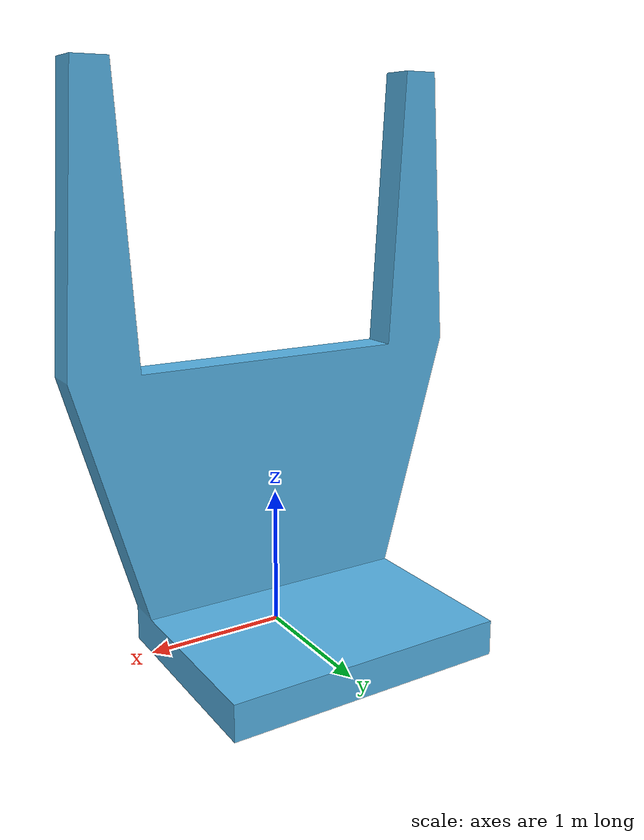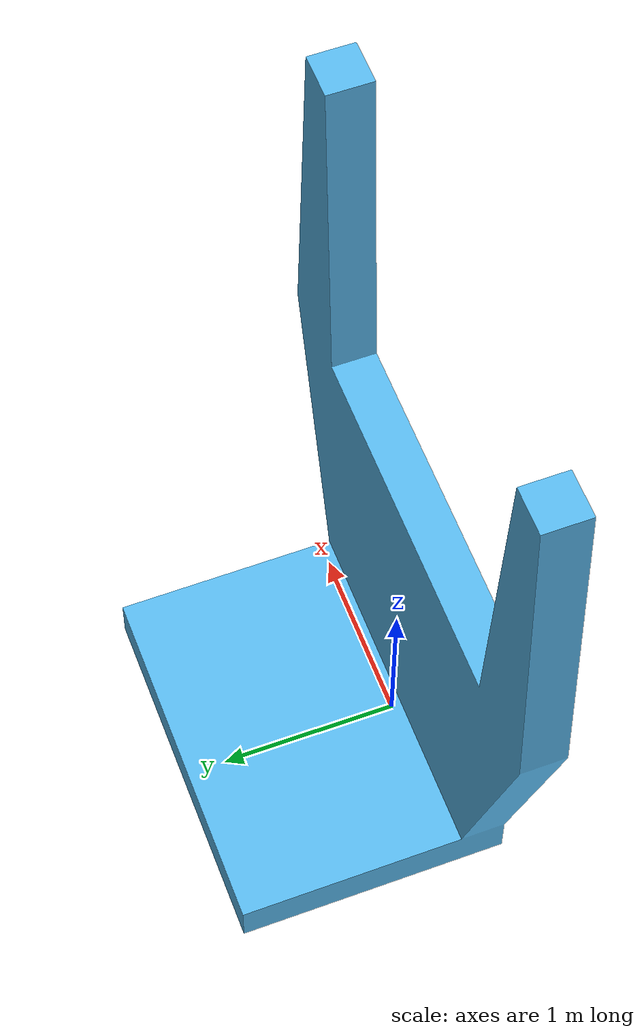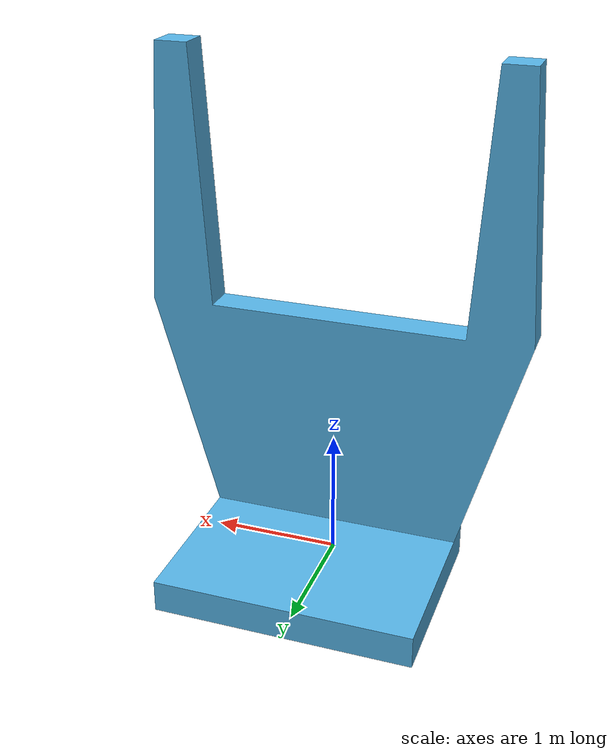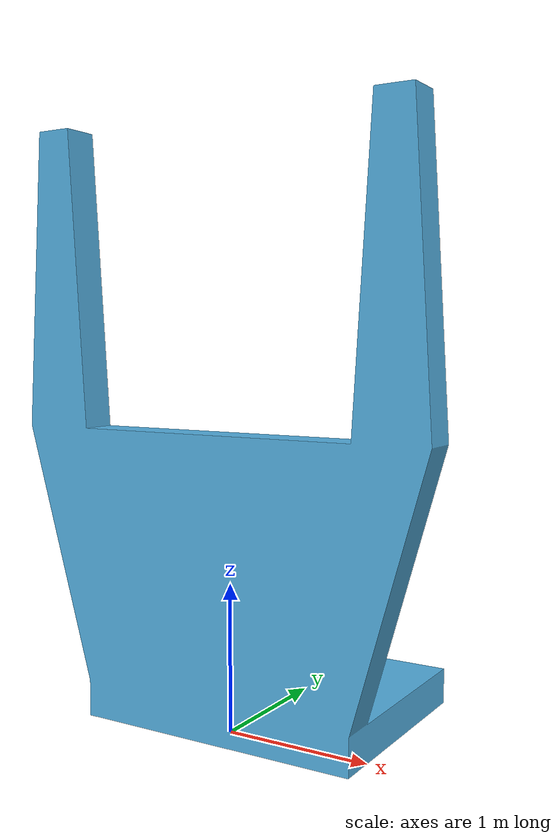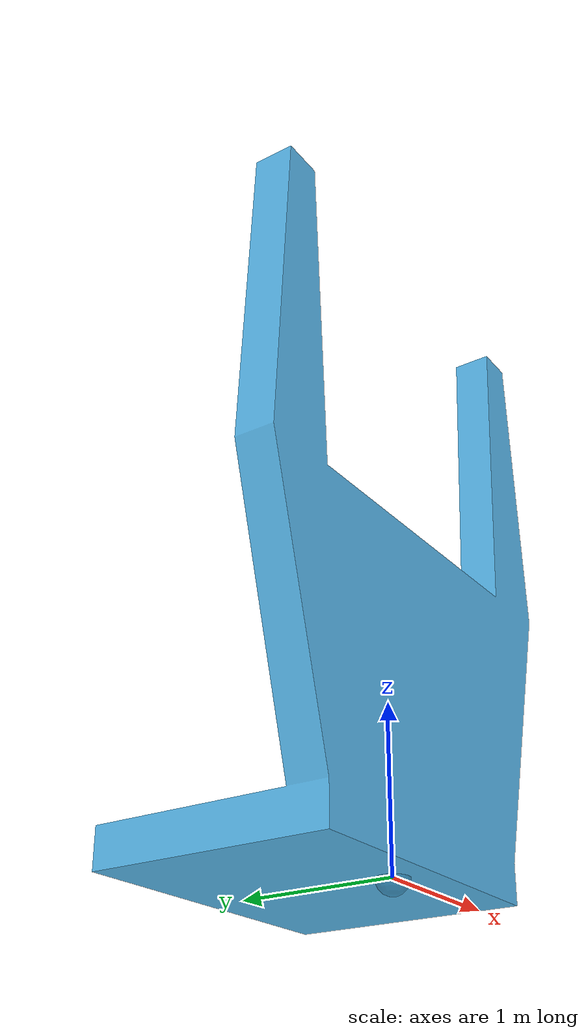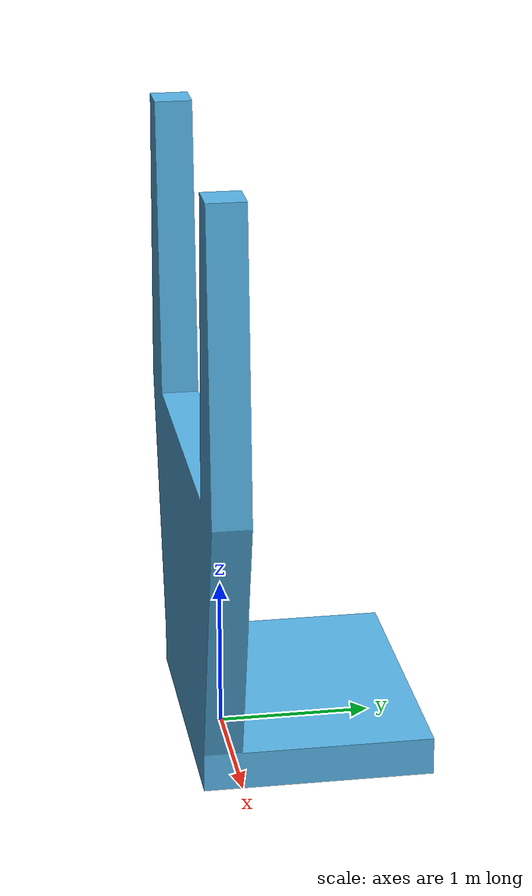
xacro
<?xml version="1.0"?>

<robot name="eval_marvin">

    <material name="OA">
        <color rgba="0.101960784 0.42745098 0.588235294 0.333"/>
    </material>

    <gazebo reference="link_base">
        <turnGravityOff>false</turnGravityOff>
    </gazebo>
    <gazebo>
        <plugin name="gazebo_ros_template" filename="libgazebo_ros_template.so"/>
    </gazebo>

    <link name="link_base">
        <visual>
            <origin xyz="0.0 0.0 0.0"/>
            <geometry>
                <sphere radius="0.1"/>
            </geometry>
            <material name="OA"/>
        </visual>
        <inertial>
            <origin xyz="0.0 0.0 0.25" rpy="0.0 0.0 0.0"/>
            <mass value="1.0"/>
            <inertia  ixx="1.0" ixy="0.0"  ixz="0.0"  iyy="1.0"  iyz="0.0"  izz="1.0"/>
        </inertial>
        <collision>
            <origin xyz="0.0 0.0 0.0" rpy="0.0 0.0 0.0"/>
            <geometry>
                <mesh filename="package://wai_oa_gazebo/resources/reps/eval_marvin/link_eval_marvin_body.dae"/>
            </geometry>
        </collision>
    </link>
    <link name="link_eval_marvin_body">
        <visual>
            <origin xyz="0.0 0.0 0.0"/>
            <geometry>
                <mesh filename="package://wai_oa_gazebo/resources/reps/eval_marvin/link_eval_marvin_body.dae"/>
            </geometry>
        </visual>
    </link>

    <joint name="joint_eval_marvin_body" type="fixed">
        <origin xyz="0.0 0.0 0.0" rpy="0.0 0.0 0.0"/>
        <parent link="link_base"/>
        <child link="link_eval_marvin_body"/>
    </joint>

</robot>
